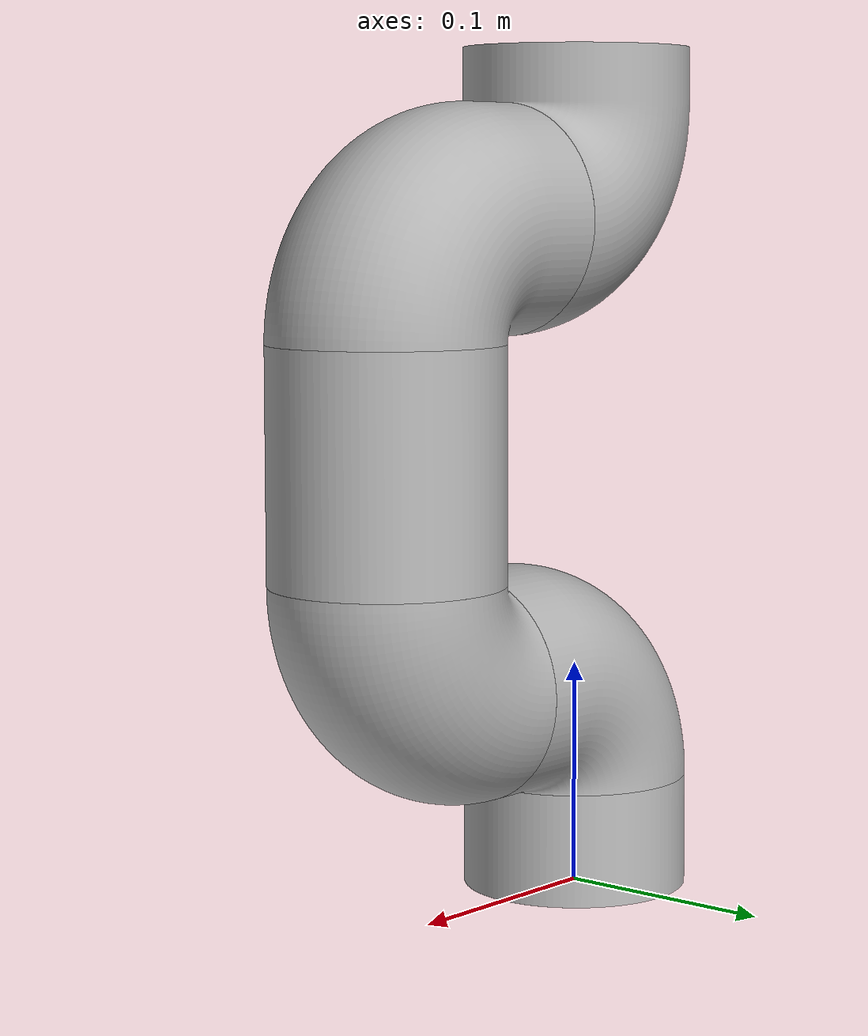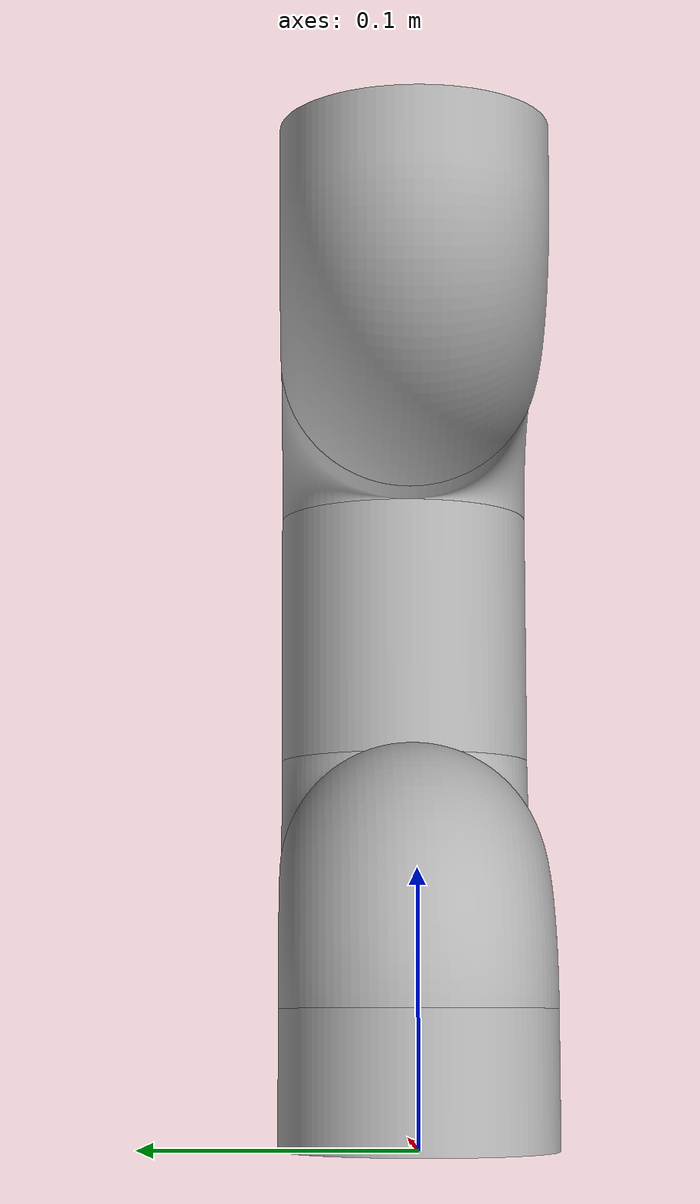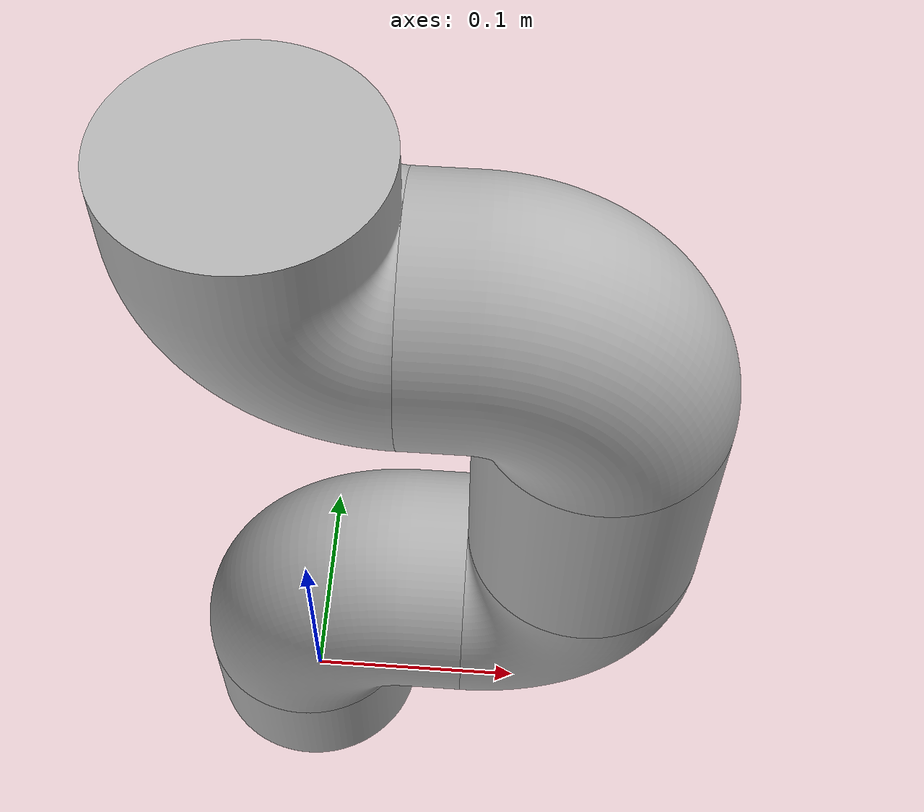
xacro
<?xml version="1.0" ?>
<robot name="five_joint_arm" xmlns:xacro="http://www.ros.org/wiki/xacro">

<xacro:include filename="$(find five_joint_arm_description)/urdf/materials.xacro" />
<xacro:include filename="$(find five_joint_arm_description)/urdf/five_joint_arm.trans" />
<xacro:include filename="$(find five_joint_arm_description)/urdf/five_joint_arm.gazebo" />
<link name="base_link">
  <inertial>
    <origin xyz="-1.1580046200244058e-17 5.790023100122029e-18 0.024999999999999994" rpy="0 0 0"/>
    <mass value="3.082687791334984"/>
    <inertia ixx="0.002569" iyy="0.002569" izz="0.003853" ixy="-0.0" iyz="-0.0" ixz="-0.0"/>
  </inertial>
  <visual>
    <origin xyz="0 0 0" rpy="0 0 0"/>
    <geometry>
      <mesh filename="file://$(find five_joint_arm_description)/meshes/base_link.stl" scale="0.001 0.001 0.001"/>
    </geometry>
    <material name="silver"/>
  </visual>
  <collision>
    <origin xyz="0 0 0" rpy="0 0 0"/>
    <geometry>
      <mesh filename="file://$(find five_joint_arm_description)/meshes/base_link.stl" scale="0.001 0.001 0.001"/>
    </geometry>
  </collision>
</link>

<link name="limb1_1">
  <inertial>
    <origin xyz="0.022836536711912547 -1.1184147905233377e-17 0.04225427622591389" rpy="0 0 0"/>
    <mass value="6.383618554951958"/>
    <inertia ixx="0.008001" iyy="0.010215" izz="0.010193" ixy="-0.0" iyz="-0.0" ixz="-0.001547"/>
  </inertial>
  <visual>
    <origin xyz="-0.0 -0.0 -0.05" rpy="0 0 0"/>
    <geometry>
      <mesh filename="file://$(find five_joint_arm_description)/meshes/limb1_1.stl" scale="0.001 0.001 0.001"/>
    </geometry>
    <material name="silver"/>
  </visual>
  <collision>
    <origin xyz="-0.0 -0.0 -0.05" rpy="0 0 0"/>
    <geometry>
      <mesh filename="file://$(find five_joint_arm_description)/meshes/limb1_1.stl" scale="0.001 0.001 0.001"/>
    </geometry>
  </collision>
</link>

<link name="limb2_1">
  <inertial>
    <origin xyz="0.03978873577297347 -1.474417275201089e-17 0.010211264227026493" rpy="0 0 0"/>
    <mass value="4.842274659284468"/>
    <inertia ixx="0.005953" iyy="0.005853" izz="0.005953" ixy="-0.0" iyz="0.0" ixz="-0.000923"/>
  </inertial>
  <visual>
    <origin xyz="-0.075 0.0 -0.1" rpy="0 0 0"/>
    <geometry>
      <mesh filename="file://$(find five_joint_arm_description)/meshes/limb2_1.stl" scale="0.001 0.001 0.001"/>
    </geometry>
    <material name="silver"/>
  </visual>
  <collision>
    <origin xyz="-0.075 0.0 -0.1" rpy="0 0 0"/>
    <geometry>
      <mesh filename="file://$(find five_joint_arm_description)/meshes/limb2_1.stl" scale="0.001 0.001 0.001"/>
    </geometry>
  </collision>
</link>

<link name="limb3_1">
  <inertial>
    <origin xyz="0.0 0.0 0.050000000000000044" rpy="0 0 0"/>
    <mass value="6.165375582669969"/>
    <inertia ixx="0.008991" iyy="0.008991" izz="0.007707" ixy="0.0" iyz="-0.0" ixz="0.0"/>
  </inertial>
  <visual>
    <origin xyz="-0.125 -0.0 -0.15" rpy="0 0 0"/>
    <geometry>
      <mesh filename="file://$(find five_joint_arm_description)/meshes/limb3_1.stl" scale="0.001 0.001 0.001"/>
    </geometry>
    <material name="silver"/>
  </visual>
  <collision>
    <origin xyz="-0.125 -0.0 -0.15" rpy="0 0 0"/>
    <geometry>
      <mesh filename="file://$(find five_joint_arm_description)/meshes/limb3_1.stl" scale="0.001 0.001 0.001"/>
    </geometry>
  </collision>
</link>

<link name="limb4_1">
  <inertial>
    <origin xyz="-0.02283653671191263 -3.3552443715700145e-17 0.04225427622591388" rpy="0 0 0"/>
    <mass value="6.383618554951956"/>
    <inertia ixx="0.008001" iyy="0.010215" izz="0.010193" ixy="-0.0" iyz="-0.0" ixz="0.001547"/>
  </inertial>
  <visual>
    <origin xyz="-0.125 -0.0 -0.25" rpy="0 0 0"/>
    <geometry>
      <mesh filename="file://$(find five_joint_arm_description)/meshes/limb4_1.stl" scale="0.001 0.001 0.001"/>
    </geometry>
    <material name="silver"/>
  </visual>
  <collision>
    <origin xyz="-0.125 -0.0 -0.25" rpy="0 0 0"/>
    <geometry>
      <mesh filename="file://$(find five_joint_arm_description)/meshes/limb4_1.stl" scale="0.001 0.001 0.001"/>
    </geometry>
  </collision>
</link>

<link name="limb5_1">
  <inertial>
    <origin xyz="-0.042254276225913975 -2.796036976308341e-17 0.022836536711912547" rpy="0 0 0"/>
    <mass value="6.3836185549519655"/>
    <inertia ixx="0.010193" iyy="0.010215" izz="0.008001" ixy="-0.0" iyz="-0.0" ixz="0.001547"/>
  </inertial>
  <visual>
    <origin xyz="-0.05 -0.0 -0.3" rpy="0 0 0"/>
    <geometry>
      <mesh filename="file://$(find five_joint_arm_description)/meshes/limb5_1.stl" scale="0.001 0.001 0.001"/>
    </geometry>
    <material name="silver"/>
  </visual>
  <collision>
    <origin xyz="-0.05 -0.0 -0.3" rpy="0 0 0"/>
    <geometry>
      <mesh filename="file://$(find five_joint_arm_description)/meshes/limb5_1.stl" scale="0.001 0.001 0.001"/>
    </geometry>
  </collision>
</link>

<link name="world"/>

<joint name="world_base_joint" type="fixed">
  <origin xyz="0.0 0.0 0.00" rpy="0 0 0"/>
  <parent link="world"/>
  <child link="base_link"/>
  <axis xyz="0.0 0.0 1.0"/>
</joint>

<joint name="base_l1_joint" type="revolute">
  <origin xyz="0.0 0.0 0.05" rpy="0 0 0"/>
  <parent link="base_link"/>
  <child link="limb1_1"/>
  <axis xyz="0.0 0.0 1.0"/>
  <limit lower="-2.14" upper="2.14" effort="100" velocity="100"/>
  <dynamics damping="10" friction="1.0"/>
</joint>

<joint name="l1_l2_joint" type="revolute">
  <origin xyz="0.075 -0.0 0.05" rpy="0 0 0"/>
  <parent link="limb1_1"/>
  <child link="limb2_1"/>
  <axis xyz="1.0 0.0 0.0"/>
  <limit lower="-2.14" upper="2.14" effort="100" velocity="100"/>
  <dynamics damping="10" friction="1.0"/>
</joint>

<joint name="l2_l3_joint" type="revolute">
  <origin xyz="0.05 0.0 0.05" rpy="0 0 0"/>
  <parent link="limb2_1"/>
  <child link="limb3_1"/>
  <axis xyz="0.0 0.0 1.0"/>
  <limit lower="-2.14" upper="2.14" effort="100" velocity="100"/>
  <dynamics damping="10" friction="1.0"/>
</joint>

<joint name="l3_l4_joint" type="revolute">
  <origin xyz="0.0 0.0 0.1" rpy="0 0 0"/>
  <parent link="limb3_1"/>
  <child link="limb4_1"/>
  <axis xyz="0.0 0.0 1.0"/>
  <limit lower="-2.14" upper="2.14" effort="100" velocity="100"/>
  <dynamics damping="10" friction="1.0"/>
</joint>

<joint name="l4_l5_joint" type="revolute">
  <origin xyz="-0.075 0.0 0.05" rpy="0 0 0"/>
  <parent link="limb4_1"/>
  <child link="limb5_1"/>
  <axis xyz="-1.0 0.0 0.0"/>
  <limit lower="-2.14" upper="2.14" effort="100" velocity="100"/>
  <dynamics damping="10" friction="1.0"/>
</joint>

</robot>

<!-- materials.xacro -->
<robot name="five_joint_arm" xmlns:xacro="http://www.ros.org/wiki/xacro" >

<material name="silver">
  <color rgba="0.700 0.700 0.700 1.000"/>
</material>

</robot>

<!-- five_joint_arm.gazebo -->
<robot name="five_joint_arm" xmlns:xacro="http://www.ros.org/wiki/xacro" >

<xacro:property name="body_color" value="Gazebo/Silver" />

<gazebo>
  <plugin name="control" filename="libgazebo_ros_control.so"/>
</gazebo>
<gazebo reference="base_link">
  <material>${body_color}</material>
  <mu1>0.2</mu1>
  <mu2>0.2</mu2>
  <self_collide>true</self_collide>
  <gravity>true</gravity>
</gazebo>

<gazebo reference="limb1_1">
  <material>${body_color}</material>
  <mu1>0.2</mu1>
  <mu2>0.2</mu2>
  <self_collide>true</self_collide>
</gazebo>

<gazebo reference="limb2_1">
  <material>${body_color}</material>
  <mu1>0.2</mu1>
  <mu2>0.2</mu2>
  <self_collide>true</self_collide>
</gazebo>

<gazebo reference="limb3_1">
  <material>${body_color}</material>
  <mu1>0.2</mu1>
  <mu2>0.2</mu2>
  <self_collide>true</self_collide>
</gazebo>

<gazebo reference="limb4_1">
  <material>${body_color}</material>
  <mu1>0.2</mu1>
  <mu2>0.2</mu2>
  <self_collide>true</self_collide>
</gazebo>

<gazebo reference="limb5_1">
  <material>${body_color}</material>
  <mu1>0.2</mu1>
  <mu2>0.2</mu2>
  <self_collide>true</self_collide>
</gazebo>

</robot>
